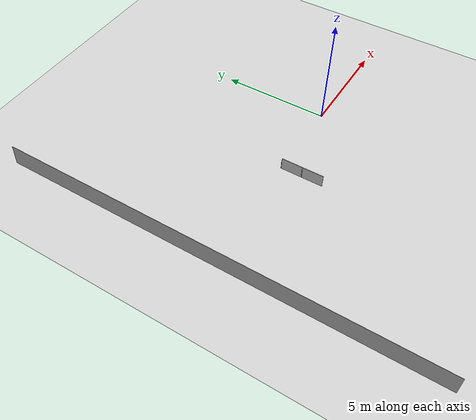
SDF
<sdf version="1.7">
 <world name="default">
  <model name="ground_plane">
   <static>true</static>
   <link name="link">
    <collision name="collision">
     <geometry><plane><normal>0 0 1</normal><size>1 1</size></plane></geometry>
    </collision>
    <visual name="visual">
     <geometry><plane><normal>0 0 1</normal><size>100 100</size></plane></geometry>
     <material>
      <ambient>0.8 0.8 0.8 1</ambient>
      <diffuse>0.8 0.8 0.8 1</diffuse>
      <specular>0.8 0.8 0.8 1</specular>
     </material>
    </visual>
    <inertial>
     <mass>1</mass>
     <inertia><ixx>1</ixx><ixy>0</ixy><ixz>0</ixz><iyy>1</iyy><iyz>0</iyz><izz>1</izz></inertia>
    </inertial>
   </link>
  </model>
  <model name="wall_1">
   <pose>-10 0 0.5 0 0 -1.57</pose>
   <static>true</static>
   <link name="link">
    <collision name="collision"><geometry><box><size>20 0.01 1</size></box></geometry></collision>
    <visual name="visual">
     <geometry><box><size>20 0.01 1</size></box></geometry>
     <material>
      <ambient>0.7 0.7 0.7 1</ambient>
      <diffuse>0.7 0.7 0.7 1</diffuse>
      <specular>0.7 0.7 0.7 1</specular>
     </material>
    </visual>
    <inertial>
     <mass>1</mass>
     <inertia><ixx>1</ixx><ixy>0</ixy><ixz>0</ixz><iyy>1</iyy><iyz>0</iyz><izz>1</izz></inertia>
    </inertial>
   </link>
  </model>
  <model name="maze_1_6x5_clone_clone_7">
   <frame name="plywood_panel_0_0_b::__model__" attached_to="plywood_panel_0_0_b::main">
    <pose relative_to="__model__">0 0 0 0 -0 1.571</pose>
   </frame>
   <static>true</static>
   <link name="plywood_panel_0_0_b::main">
    <pose relative_to="plywood_panel_0_0_b::__model__">0 0 0 0 -0 0</pose>
    <collision name="collision">
     <pose>0 -0.5 0.3 -1.571 -0 -1.571</pose>
     <geometry><box><size>0.98 0.6 0.02</size></box></geometry>
    </collision>
    <visual name="visual">
     <pose>0.01 -0.01 0 3.14159 -1.57059 3.14159</pose>
     <geometry>
      <mesh>
       <scale>1 1 1</scale>
       <uri>/home/mayank/cognipilot/cranium/src/dream_world/models/plywood_panel/meshes/plywood.dae</uri>
      </mesh>
     </geometry>
    </visual>
   </link>
   <frame name="wooden_joint_0_0_b::__model__" attached_to="wooden_joint_0_0_b::link_0">
    <pose relative_to="__model__">0 0 0 0 -0 0</pose>
   </frame>
   <link name="wooden_joint_0_0_b::link_0">
    <pose relative_to="wooden_joint_0_0_b::__model__">0 0 0.25 0 -0 0</pose>
    <inertial>
     <mass>0.00215981</mass>
     <inertia>
      <ixx>0.00018028</ixx>
      <ixy>0</ixy>
      <ixz>0</ixz>
      <iyy>0.00018028</iyy>
      <iyz>0</iyz>
      <izz>5.8e-07</izz>
     </inertia>
    </inertial>
    <visual name="visual">
     <geometry><cylinder><radius>0.01</radius><length>0.5</length></cylinder></geometry>
     <material>
      <lighting>1</lighting>
      <script><uri>file://media/materials/scripts/gazebo.material</uri><name>Gazebo/Wood</name></script>
      <shader type="pixel"><normal_map>__default__</normal_map></shader>
      <ambient>0.3 0.3 0.3 1</ambient>
      <diffuse>0.7 0.7 0.7 1</diffuse>
      <specular>0.01 0.01 0.01 1</specular>
      <emissive>0 0 0 1</emissive>
     </material>
    </visual>
    <collision name="collision">
     <geometry><cylinder><radius>0.01</radius><length>0.5</length></cylinder></geometry>
     <surface>
      <friction>
       <ode><mu>1</mu><mu2>1</mu2><fdir1>0 0 0</fdir1><slip1>0</slip1><slip2>0</slip2></ode>
       <torsional>
        <coefficient>1</coefficient>
        <patch_radius>0</patch_radius>
        <surface_radius>0</surface_radius>
        <use_patch_radius>1</use_patch_radius>
        <ode><slip>0</slip></ode>
       </torsional>
      </friction>
      <bounce><restitution_coefficient>0</restitution_coefficient><threshold>1e+06</threshold></bounce>
      <contact>
       <collide_without_contact>0</collide_without_contact>
       <collide_without_contact_bitmask>1</collide_without_contact_bitmask>
       <collide_bitmask>1</collide_bitmask>
       <ode>
        <soft_cfm>0</soft_cfm>
        <soft_erp>0.2</soft_erp>
        <kp>1e+13</kp>
        <kd>1</kd>
        <max_vel>0.01</max_vel>
        <min_depth>0</min_depth>
       </ode>
       <bullet>
        <split_impulse>1</split_impulse>
        <split_impulse_penetration_threshold>-0.01</split_impulse_penetration_threshold>
        <soft_cfm>0</soft_cfm>
        <soft_erp>0.2</soft_erp>
        <kp>1e+13</kp>
        <kd>1</kd>
       </bullet>
      </contact>
     </surface>
    </collision>
   </link>
   <static>true</static>
   <pose>-4 0 0 0 0 -1.5708</pose>
  </model>
  <model name="maze_1_6x5_clone_clone_8">
   <frame name="plywood_panel_0_0_b::__model__" attached_to="plywood_panel_0_0_b::main">
    <pose relative_to="__model__">0 0 0 0 -0 1.571</pose>
   </frame>
   <static>true</static>
   <link name="plywood_panel_0_0_b::main">
    <pose relative_to="plywood_panel_0_0_b::__model__">0 0 0 0 -0 0</pose>
    <collision name="collision">
     <pose>0 -0.5 0.3 -1.571 -0 -1.571</pose>
     <geometry><box><size>0.98 0.6 0.02</size></box></geometry>
    </collision>
    <visual name="visual">
     <pose>0.01 -0.01 0 3.14159 -1.57059 3.14159</pose>
     <geometry>
      <mesh>
       <scale>1 1 1</scale>
       <uri>/home/mayank/cognipilot/cranium/src/dream_world/models/plywood_panel/meshes/plywood.dae</uri>
      </mesh>
     </geometry>
    </visual>
   </link>
   <frame name="wooden_joint_0_0_b::__model__" attached_to="wooden_joint_0_0_b::link_0">
    <pose relative_to="__model__">0 0 0 0 -0 0</pose>
   </frame>
   <link name="wooden_joint_0_0_b::link_0">
    <pose relative_to="wooden_joint_0_0_b::__model__">0 0 0.25 0 -0 0</pose>
    <inertial>
     <mass>0.00215981</mass>
     <inertia>
      <ixx>0.00018028</ixx>
      <ixy>0</ixy>
      <ixz>0</ixz>
      <iyy>0.00018028</iyy>
      <iyz>0</iyz>
      <izz>5.8e-07</izz>
     </inertia>
    </inertial>
    <visual name="visual">
     <geometry><cylinder><radius>0.01</radius><length>0.5</length></cylinder></geometry>
     <material>
      <lighting>1</lighting>
      <script><uri>file://media/materials/scripts/gazebo.material</uri><name>Gazebo/Wood</name></script>
      <shader type="pixel"><normal_map>__default__</normal_map></shader>
      <ambient>0.3 0.3 0.3 1</ambient>
      <diffuse>0.7 0.7 0.7 1</diffuse>
      <specular>0.01 0.01 0.01 1</specular>
      <emissive>0 0 0 1</emissive>
     </material>
    </visual>
    <collision name="collision">
     <geometry><cylinder><radius>0.01</radius><length>0.5</length></cylinder></geometry>
     <surface>
      <friction>
       <ode><mu>1</mu><mu2>1</mu2><fdir1>0 0 0</fdir1><slip1>0</slip1><slip2>0</slip2></ode>
       <torsional>
        <coefficient>1</coefficient>
        <patch_radius>0</patch_radius>
        <surface_radius>0</surface_radius>
        <use_patch_radius>1</use_patch_radius>
        <ode><slip>0</slip></ode>
       </torsional>
      </friction>
      <bounce><restitution_coefficient>0</restitution_coefficient><threshold>1e+06</threshold></bounce>
      <contact>
       <collide_without_contact>0</collide_without_contact>
       <collide_without_contact_bitmask>1</collide_without_contact_bitmask>
       <collide_bitmask>1</collide_bitmask>
       <ode>
        <soft_cfm>0</soft_cfm>
        <soft_erp>0.2</soft_erp>
        <kp>1e+13</kp>
        <kd>1</kd>
        <max_vel>0.01</max_vel>
        <min_depth>0</min_depth>
       </ode>
       <bullet>
        <split_impulse>1</split_impulse>
        <split_impulse_penetration_threshold>-0.01</split_impulse_penetration_threshold>
        <soft_cfm>0</soft_cfm>
        <soft_erp>0.2</soft_erp>
        <kp>1e+13</kp>
        <kd>1</kd>
       </bullet>
      </contact>
     </surface>
    </collision>
   </link>
   <static>true</static>
   <pose>-4 -1 0 0 0 -1.5708</pose>
  </model>
 </world>
</sdf>
